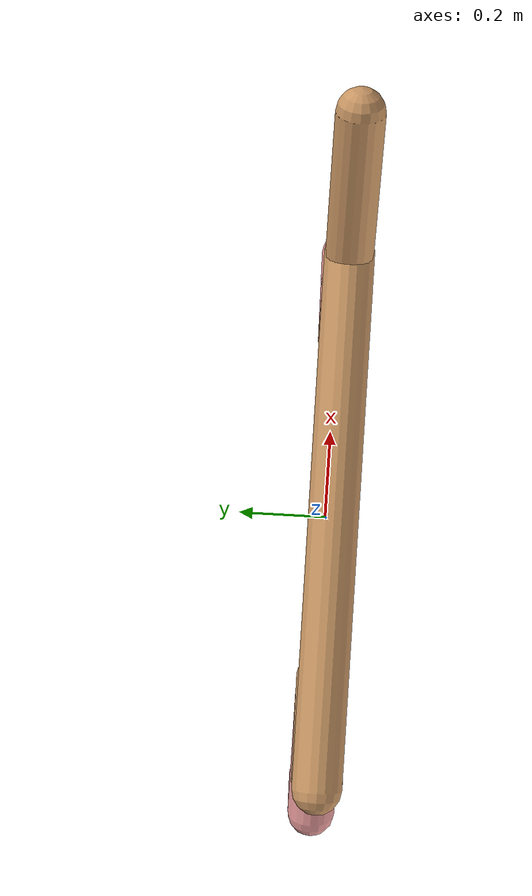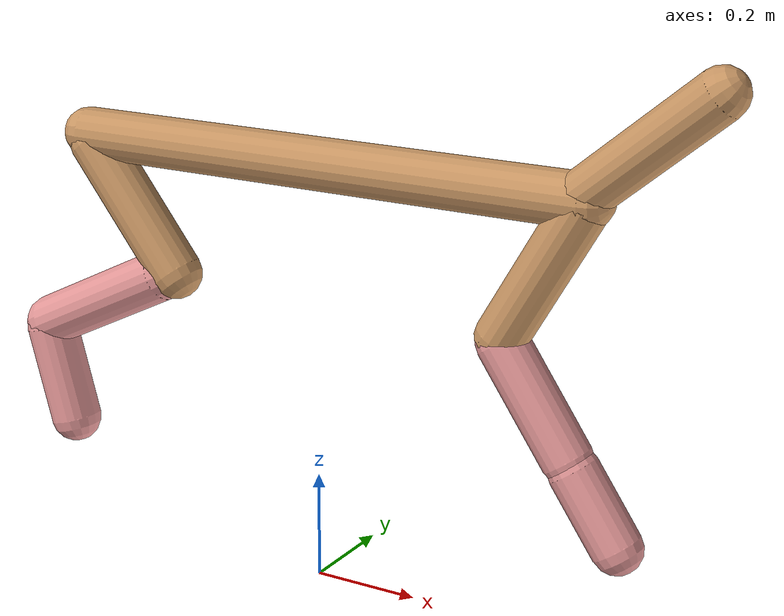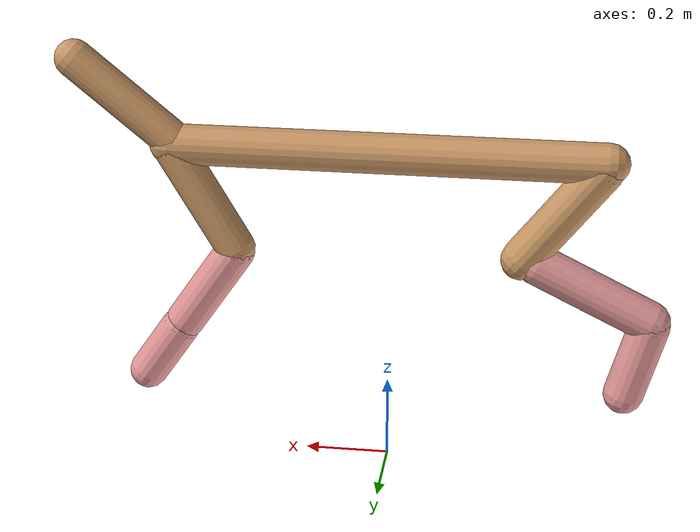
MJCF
<mujoco model="cheetah">
  <compiler angle="radian" coordinate="local" inertiafromgeom="true" settotalmass="14" />
  <default>
    <joint armature=".1" damping=".01" limited="true" solimplimit="0 .8 .03" solreflimit=".02 1" stiffness="8" />
    <geom conaffinity="0" condim="3" contype="1" friction="0.8 .1 .1" rgba="0.8 0.6 .4 1" solimp="0.0 0.8 0.01" solref="0.02 1" />
    <motor ctrllimited="true" ctrlrange="-1 1" />
  </default>
  <size nstack="300000" nuser_geom="1" />
  <option gravity="0 0 -9.81" timestep="0.01" />
  <worldbody>
    <body name="torso" pos="0.0 0.0 0.7842451963942483">
      <joint armature="0" axis="1 0 0" damping="0" limited="false" name="ignorex" pos="0 0 0" stiffness="0" type="slide" />
      <joint armature="0" axis="0 0 1" damping="0" limited="false" name="ignorez" pos="0 0 0" stiffness="0" type="slide" />
      <joint armature="0" axis="0 1 0" damping="0" limited="false" name="ignorey" pos="0 0 0" stiffness="0" type="hinge" />
      <geom fromto="-0.5 0.0 0.0 0.5101542870950124 0.0 0.0" name="torso" size="0.04735451609215859" type="capsule" />
      <geom axisangle="0 1 0 .87" name="head" pos="0.6101542870950124 0.0 0.1" size="0.04516603829810792 0.15" type="capsule" />

      <body name="bthigh" pos="-.5 0 0">
        <joint axis="0 1 0" damping="6" name="bthigh" pos="0 0 0" range="-.52 1.05" stiffness="240" type="hinge" />
        <geom axisangle="0 1 0 -3.8" name="bthigh" pos="0.10041437246221327 0.0 -0.13053868420087725" size="0.048672348460630926 0.14567962136937815" type="capsule" />
        <body name="bshin" pos="0.16082874492442653 0.0 -0.2510773684017545">
          <joint axis="0 1 0" damping="4.5" name="bshin" pos="0 0 0" range="-.785 .785" stiffness="180" type="hinge" />
          <geom axisangle="0 1 0 -2.03" name="bshin" pos="-0.1406288329300239 0.0 -0.07031441646501195" rgba="0.9 0.6 0.6 1" size="0.048672348460630926 0.15070305658901187" type="capsule" />
          <body name="bfoot" pos="-0.2812576658600478 0.0 -0.1406288329300239">
            <joint axis="0 1 0" damping="3" name="bfoot" pos="0 0 0" range="-.4 .785" stiffness="120" type="hinge" />
            <geom axisangle="0 1 0 -.27" name="bfoot" pos="0.03013017867961376 0.0 -0.0974209110640845" rgba="0.9 0.6 0.6 1" size="0.048672348460630926 0.09444058212911412" type="capsule" />
            <inertial mass="10" />
          </body>
        </body>
      </body>
      <body name="fthigh" pos="0.5101542870950124 0.0 0.0">
        <joint axis="0 1 0" damping="4.5" name="fthigh" pos="0 0 0" range="-1.5 0.8" stiffness="180" type="hinge" />
        <geom axisangle="0 1 0 .52" name="fthigh" pos="-0.07590552185758596 0.0 -0.13012375175586163" size="0.046326209246066154 0.14472030451928353" type="capsule" />
        <body name="fshin" pos="-0.15181104371517193 0.0 -0.26024750351172327">
          <joint axis="0 1 0" damping="3" name="fshin" pos="0 0 0" range="-1.2 1.1" stiffness="120" type="hinge" />
          <geom axisangle="0 1 0 -.6" name="fshin" pos="0.07046906408967897 0.0 -0.09757255027801702" rgba="0.9 0.6 0.6 1" size="0.046326209246066154 0.11534099457927859" type="capsule" />
          <body name="ffoot" pos="0.14093812817935794 0.0 -0.19514510055603404">
            <joint axis="0 1 0" damping="1.5" name="ffoot" pos="0 0 0" range="-3.1 -0.3" stiffness="60" type="hinge" />
            <geom axisangle="0 1 0 -.6" name="ffoot" pos="0.04833570717963603 0.0 -0.07518887783498938" rgba="0.9 0.6 0.6 1" size="0.046326209246066154 0.07616858132593869" type="capsule" />
            <inertial mass="10" />
          </body>
        </body>
      </body>
    </body>
  </worldbody>
  <actuator>
    <motor gear="120" joint="bthigh" name="bthigh" />
    <motor gear="90" joint="bshin" name="bshin" />
    <motor gear="60" joint="bfoot" name="bfoot" />
    <motor gear="120" joint="fthigh" name="fthigh" />
    <motor gear="60" joint="fshin" name="fshin" />
    <motor gear="30" joint="ffoot" name="ffoot" />
  </actuator>
</mujoco>
